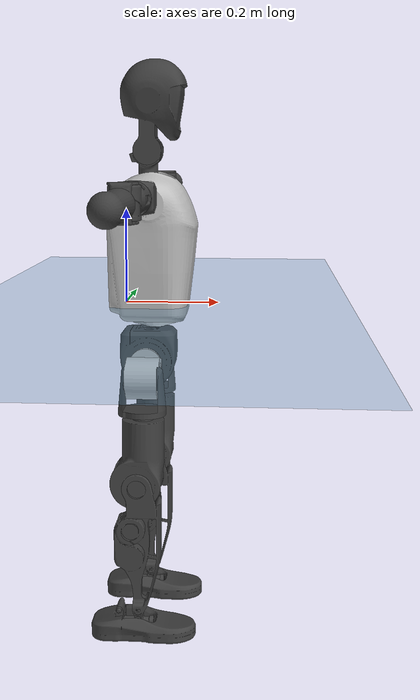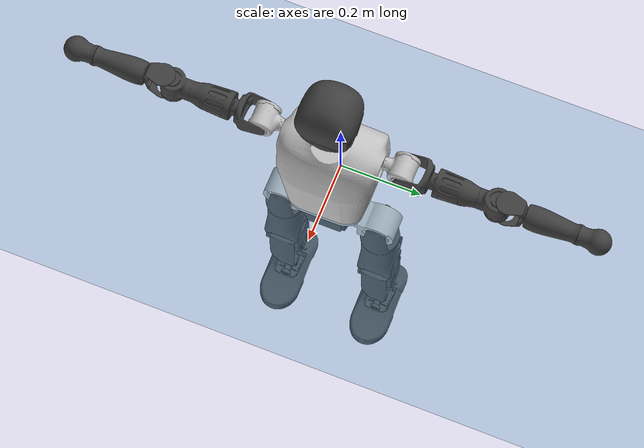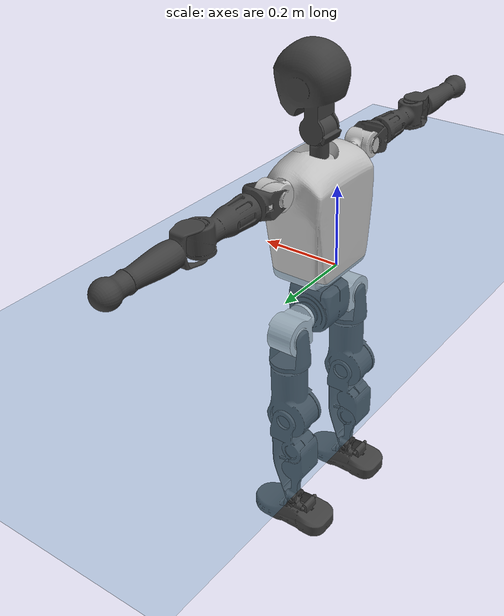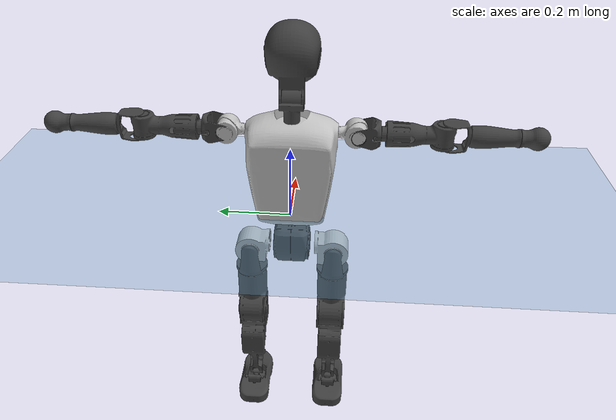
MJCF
<mujoco model="T1">
  <compiler angle="radian" assetdir="assets" balanceinertia="true" inertiafromgeom="false"/>

  <option timestep="0.005" density="1.2" viscosity="2e-05"/>

  <size nkey="1"/>

  <visual>
    <quality shadowsize="8192"/>
    <map shadowclip="0.5"/>
  </visual>

  <default>
    <default class="/">
      <joint armature="0.01" damping="0.01" frictionloss="0.1"/>
      <geom contype="0" conaffinity="0" group="1" solref="-1000 -80"/>
      <site size="0.01 0.005 0.005" group="5"/>
      <general forcelimited="true" biastype="affine" gainprm="25" biasprm="0 -25 -0.6"/>
      <default class="t1">
        <geom rgba="0.25 0.25 0.25 1"/>
        <default class="visual">
          <geom type="mesh" group="2"/>
        </default>
        <default class="collision">
          <geom group="3"/>
        </default>
        <default class="foot">
          <geom size="0.1115 0.05 0.015" type="box" condim="6" group="4" priority="1" solimp="0.015 1 0.015"/>
        </default>
        <default class="reward_collision_sphere">
          <geom group="5" rgba="1 0 0 1"/>
        </default>
      </default>
    </default>
  </default>

  <asset>
    <texture type="skybox" colorspace="auto" name="//unnamed_texture_0" builtin="gradient" rgb1="0.95 0.95 0.95" rgb2="0.95 0.95 0.95" width="100" height="600"/>
    <texture type="2d" colorspace="auto" name="texplane" builtin="checker" rgb1="0.345 0.575 0.748" rgb2="0.345 0.575 0.748" markrgb="1 1 1" width="512" height="512"/>
    <material name="MatPlane" class="/" texture="texplane" texuniform="true" texrepeat="2 2" specular="0.9"/>
    <mesh name="Trunk" class="/" file="Trunk.stl"/>
    <mesh name="H1" class="/" file="H1.stl"/>
    <mesh name="H2" class="/" file="H2.stl"/>
    <mesh name="AL1" class="/" file="AL1.stl"/>
    <mesh name="AL2" class="/" file="AL2.stl"/>
    <mesh name="AL3" class="/" file="AL3.stl"/>
    <mesh name="left_hand_link" class="/" file="left_hand_link.stl"/>
    <mesh name="AR1" class="/" file="AR1.stl"/>
    <mesh name="AR2" class="/" file="AR2.stl"/>
    <mesh name="AR3" class="/" file="AR3.stl"/>
    <mesh name="right_hand_link" class="/" file="right_hand_link.stl"/>
    <mesh name="Waist" class="/" file="Waist.stl"/>
    <mesh name="Hip_Pitch_Left" class="/" file="Hip_Pitch_Left.stl"/>
    <mesh name="Hip_Roll_Left" class="/" file="Hip_Roll_Left.stl"/>
    <mesh name="Hip_Yaw_Left" class="/" file="Hip_Yaw_Left.stl"/>
    <mesh name="Shank_Left" class="/" file="Shank_Left.stl"/>
    <mesh name="Ankle_Cross_Left" class="/" file="Ankle_Cross_Left.stl"/>
    <mesh name="left_foot_link" class="/" file="left_foot_link.stl"/>
    <mesh name="Hip_Pitch_Right" class="/" file="Hip_Pitch_Right.stl"/>
    <mesh name="Hip_Roll_Right" class="/" file="Hip_Roll_Right.stl"/>
    <mesh name="Hip_Yaw_Right" class="/" file="Hip_Yaw_Right.stl"/>
    <mesh name="Shank_Right" class="/" file="Shank_Right.stl"/>
    <mesh name="Ankle_Cross_Right" class="/" file="Ankle_Cross_Right.stl"/>
    <mesh name="right_foot_link" class="/" file="right_foot_link.stl"/>
  </asset>

  <worldbody>
    <geom name="floor" class="/" size="100 100 0.125" type="plane" group="0" material="MatPlane"/>
    <light name="toplight_shadow" class="/" pos="0 0 5" dir="0.0990148 0.0990148 -0.990148" type="directional" ambient="0.04 0.04 0.04" diffuse="0.55 0.55 0.55" specular="0.12 0.12 0.12"/>
    <light name="toplight_fill" class="/" pos="0 0 5" dir="0.0990148 0.0990148 -0.990148" type="directional" castshadow="false" ambient="0.04 0.04 0.04" diffuse="0.3 0.3 0.3" specular="0.08 0.08 0.08"/>
    <body name="trunk" childclass="t1" pos="-8.56854e-05 0.000151359 -4.71943e-05" quat="1 -1.82808e-06 -4.3662e-05 -1.52795e-05">
      <inertial pos="0.0412859 0.000147173 0.111932" quat="0.999923 -0.000960831 -0.0119955 0.00312265" mass="11.7059" diaginertia="0.0251325 0.160025 0.0763573"/>
      <joint name="//unnamed_joint_0" type="free" armature="0" damping="0" frictionloss="0"/>
      <geom name="//unnamed_geom_1" class="visual" rgba="0.76 0.76 0.76 1" mesh="Trunk"/>
      <geom name="//unnamed_geom_2" class="collision" size="0.0747523 0.0996698 0.149505" pos="0.0462272 0 0.127727" type="box"/>
      <geom name="//unnamed_geom_3" class="reward_collision_sphere" size="0.11462" pos="0.0462272 0 0.106439"/>
      <geom name="//unnamed_geom_4" class="reward_collision_sphere" size="0.0149505" pos="0.0462272 0.0981962 0"/>
      <geom name="//unnamed_geom_5" class="reward_collision_sphere" size="0.0149505" pos="0.0462272 -0.0981962 0"/>
      <geom name="//unnamed_geom_6" class="reward_collision_sphere" size="0.0149505" pos="0.0462272 0.123612 0.19159"/>
      <geom name="//unnamed_geom_7" class="reward_collision_sphere" size="0.0149505" pos="0.0462272 -0.123612 0.19159"/>
      <site name="imu" pos="0.00433882 0.00327886 0.00203452" size="0.00996698"/>
      <camera name="track" pos="0 -2.3105 0" quat="0.707107 0.707107 0 0" mode="trackcom"/>
      <camera name="ego_camera" pos="0.0939953 0 0.447044" quat="-0.5 -0.5 0.5 0.5"/>
      <body name="H1" pos="0.048077 -9.20161e-05 0.257965" quat="1 -2.15719e-06 -1.90508e-05 3.52457e-05">
        <inertial pos="-0.00114754 -0.00105293 0.0606933" quat="0.763576 -0.0137605 0.00158729 0.64557" mass="0.44484" diaginertia="6.58688e-05 0.000465436 0.000206051"/>
        <joint name="AAHead_yaw" pos="0 0 0" axis="0.000150277 -0.00203071 0.999998" stiffness="9.36042e-05" range="-1.57023 1.56865" armature="0.0100949" damping="0.00613878" frictionloss="0.094678"/>
        <geom name="//unnamed_geom_8" class="visual" mesh="H1"/>
        <body name="H2" pos="1.14872e-05 1.70378e-05 0.0659845" quat="1 -6.99407e-06 -4.4327e-05 -7.10927e-05">
          <inertial pos="0.00551645 0.000859788 0.104871" quat="0.988489 0.106323 -0.0734585 -0.0786682" mass="0.624073" diaginertia="0.000552806 0.00395417 0.00232835"/>
          <joint name="Head_pitch" pos="0 0 0" axis="0.00179786 -0.999998 0.00104882" range="-1.21645 0.351036" armature="0.0100335" damping="0.00540409" frictionloss="0.104099"/>
          <geom name="//unnamed_geom_9" class="visual" mesh="H2"/>
          <geom name="//unnamed_geom_10" class="collision" size="0.0797358" pos="0.00770454 0 0.117083"/>
          <geom name="//unnamed_geom_11" class="reward_collision_sphere" size="0.0897028" pos="0.0154091 0 0.106439"/>
        </body>
      </body>
      <body name="AL1" pos="0.0459979 0.123141 0.233818" quat="1 -0.000142157 0.000372527 -5.99324e-06">
        <inertial pos="-0.000673904 0.0524388 0.000583569" quat="0.503099 0.496082 -0.504872 0.495882" mass="0.524825" diaginertia="0.000370073 0.00266154 0.000397682"/>
        <joint name="Left_Shoulder_Pitch" pos="0 0 0" axis="-0.000924628 0.999999 0.00128016" range="-3.29727 1.21408" armature="0.00999059" damping="0.01135" frictionloss="0.099977"/>
        <geom name="//unnamed_geom_12" class="visual" rgba="0.76 0.76 0.76 1" mesh="AL1"/>
        <body name="AL2" pos="0.000723469 0.0548899 0.000918637" quat="1 -0.000323703 0.000393598 0.000126838">
          <inertial pos="0.00306502 0.0443314 -0.00103473" quat="0.487417 0.509244 -0.487535 0.515174" mass="0.156672" diaginertia="0.000108563 0.000707666 0.000240647"/>
          <joint name="Left_Shoulder_Roll" pos="0 0 0" axis="-1 -0.00018431 0.00089843" range="-1.57365 1.74251" armature="0.0101294" damping="0.00292134" frictionloss="0.0971896"/>
          <geom name="//unnamed_geom_13" class="visual" mesh="AL2"/>
          <body name="AL3" pos="0.000760276 0.0713544 -0.000422562" quat="1 -2.01402e-05 -2.46005e-05 -1.18464e-06">
            <inertial pos="-0.000589856 0.0982618 0.000727238" quat="0.703413 0.710781 -0.000964691 0.000776288" mass="0.995419" diaginertia="0.00346 0.026341 0.000846934"/>
            <joint name="Left_Elbow_Pitch" pos="0 0 0" axis="0.000117738 -0.999996 -0.00294638" range="-2.26723 2.27248" armature="0.00978526" damping="0.0069279" frictionloss="0.0989949"/>
            <geom name="//unnamed_geom_14" class="visual" mesh="AL3"/>
            <geom name="//unnamed_geom_15" class="collision" size="0.0299009 0.0747523" pos="0 0.0577625 0" quat="0.707105 0.707108 0 0" type="cylinder"/>
            <geom name="//unnamed_geom_16" class="reward_collision_sphere" size="0.0358811"/>
            <body name="left_hand_link" pos="-0.000119414 0.170605 0.000477378" quat="1 4.96256e-05 -5.56887e-05 -0.00017568">
              <inertial pos="-0.000442734 0.126561 0.000206033" quat="0.7078 0.706411 -0.00138803 0.000296589" mass="0.325247" diaginertia="0.00222586 0.0167232 0.000292806"/>
              <joint name="Left_Elbow_Yaw" pos="0 0 0" axis="0.00193166 -7.84157e-05 0.999998" range="-2.44874 0.00886541" armature="0.0100473" damping="0.00525701" frictionloss="0.09678"/>
              <geom name="//unnamed_geom_17" class="visual" mesh="left_hand_link"/>
              <geom name="//unnamed_geom_18" class="collision" size="0.0299009 0.0872111" pos="0 0.150182 0" quat="0.707105 0.707108 0 0" type="cylinder"/>
              <geom name="//unnamed_geom_19" class="reward_collision_sphere" size="0.0498349"/>
              <geom name="//unnamed_geom_20" class="reward_collision_sphere" size="0.0348844" pos="0 0.127077 0"/>
              <geom name="//unnamed_geom_21" class="reward_collision_sphere" size="0.0348844" pos="0 0.248379 0"/>
            </body>
          </body>
        </body>
      </body>
      <body name="AR1" pos="0.0448038 -0.12208 0.233736" quat="1 0.000285774 0.000661936 -3.99653e-05">
        <inertial pos="-9.6319e-05 -0.0520714 -0.000322405" quat="0.505278 0.495427 -0.50393 0.495279" mass="0.520688" diaginertia="0.000369787 0.00262804 0.000394081"/>
        <joint name="Right_Shoulder_Pitch" pos="0 0 0" axis="0.00144595 -0.999994 -0.0029999" range="-1.22535 3.30509" armature="0.00998957" damping="0.00609753" frictionloss="0.0971638"/>
        <geom name="//unnamed_geom_22" class="visual" rgba="0.76 0.76 0.76 1" mesh="AR1"/>
        <body name="AR2" pos="-0.000896213 -0.0537387 -0.000279599" quat="1 0.000104809 -9.00101e-05 -1.11512e-05">
          <inertial pos="0.00379567 -0.0446347 0.000845305" quat="0.51259 0.487653 -0.511994 0.487143" mass="0.157809" diaginertia="0.00010756 0.000711753 0.000238372"/>
          <joint name="Right_Shoulder_Roll" pos="0 0 0" axis="-0.999978 0.00298047 -0.00589425" range="-1.74099 1.56752" armature="0.00998738" damping="0.00326297" frictionloss="0.101673"/>
          <geom name="//unnamed_geom_23" class="visual" mesh="AR2"/>
          <body name="AR3" pos="0.000572858 -0.0706169 0.00011696" quat="1 0.000120168 -0.000122503 -0.000511738">
            <inertial pos="-0.000108296 -0.0984376 -0.00046542" quat="0.710723 0.70347 -0.00162176 0.000362584" mass="0.999044" diaginertia="0.00345345 0.025834 0.000839079"/>
            <joint name="Right_Elbow_Pitch" pos="0 0 0" axis="-0.000148479 1 0.000404918" range="-2.27489 2.27258" armature="0.00990068" damping="0.00750403" frictionloss="0.10203"/>
            <geom name="//unnamed_geom_24" class="visual" mesh="AR3"/>
            <geom name="//unnamed_geom_25" class="collision" size="0.0299009 0.0747523" pos="0 -0.0577625 0" quat="0.707105 0.707108 0 0" type="cylinder"/>
            <geom name="//unnamed_geom_26" class="reward_collision_sphere" size="0.0358811"/>
            <body name="right_hand_link" pos="-6.74742e-05 -0.169694 0.00028762" quat="1 -0.000168555 0.000296391 -0.000152462">
              <inertial pos="0.000186147 -0.127266 0.000584602" quat="0.705539 0.708668 0.000990213 0.00211034" mass="0.319364" diaginertia="0.00220501 0.0166556 0.000292914"/>
              <joint name="Right_Elbow_Yaw" pos="0 0 0" axis="-0.00116674 -0.000886203 0.999999" range="-0.0180195 2.43484" armature="0.0100766" damping="0.00688872" frictionloss="0.101322"/>
              <geom name="//unnamed_geom_27" class="visual" mesh="right_hand_link"/>
              <geom name="//unnamed_geom_28" class="collision" size="0.0299009 0.0872111" pos="0 -0.150182 0" quat="0.707105 0.707108 0 0" type="cylinder"/>
              <geom name="//unnamed_geom_29" class="reward_collision_sphere" size="0.0498349"/>
              <geom name="//unnamed_geom_30" class="reward_collision_sphere" size="0.0348844" pos="0 -0.127077 0"/>
              <geom name="//unnamed_geom_31" class="reward_collision_sphere" size="0.0348844" pos="0 -0.248379 0"/>
            </body>
          </body>
        </body>
      </body>
      <body name="Waist" pos="0.0491883 -0.00112746 -0.123877" quat="1 5.13136e-05 5.51378e-05 -6.2843e-05">
        <inertial pos="0.000524 4.00729e-05 0.0083637" quat="0.983626 0.000253513 -0.180202 0.00264504" mass="2.60668" diaginertia="0.00145945 0.0110589 0.00654397"/>
        <joint name="Waist" pos="0 0 0" axis="-0.000874126 0.00174304 0.999998" range="-1.5544 1.57267" armature="0.00957161" damping="0.0102574" frictionloss="0.0998622"/>
        <geom name="//unnamed_geom_32" class="visual" mesh="Waist"/>
        <body name="Hip_Pitch_Left" pos="0.000638896 0.121833 -0.00104524" quat="1 -9.21961e-05 0.000134529 -0.000222223">
          <inertial pos="0.00047501 -0.00918444 -0.0202669" quat="0.974927 0.22227 0.0104123 0.00201475" mass="1.0171" diaginertia="0.000491188 0.00297524 0.00171287"/>
          <joint name="Left_Hip_Pitch" pos="0 0 0" axis="-0.00141988 0.999999 -0.00037674" range="-1.80139 1.57585" armature="0.0102441" damping="0.00668503" frictionloss="0.0992287"/>
          <geom name="//unnamed_geom_33" class="visual" rgba="0.76 0.76 0.76 1" mesh="Hip_Pitch_Left"/>
          <body name="Hip_Roll_Left" pos="0.000245638 0.000844299 -0.021588" quat="1 2.23265e-06 1.98778e-06 -1.73596e-05">
            <inertial pos="0.00185109 -0.000187741 -0.0578917" quat="0.705256 -0.00600923 -0.00513064 0.708908" mass="0.37853" diaginertia="0.000475386 0.00308775 0.000701204"/>
            <joint name="Left_Hip_Roll" pos="0 0 0" axis="-0.999995 -0.00222502 0.00229866" range="-1.56939 0.21141" armature="0.0100595" damping="0.0110092" frictionloss="0.103993"/>
            <geom name="//unnamed_geom_34" class="visual" mesh="Hip_Roll_Left"/>
            <geom name="//unnamed_geom_35" class="reward_collision_sphere" size="0.0548184"/>
            <body name="Hip_Yaw_Left" pos="0.00135748 4.11553e-06 -0.0873727" quat="1 9.63078e-05 7.92928e-05 0.000202355">
              <inertial pos="-0.00495085 4.11596e-05 -0.0955138" quat="0.696942 -0.0337571 -0.031681 0.715632" mass="2.13538" diaginertia="0.0070022 0.0517709 0.00355061"/>
              <joint name="Left_Hip_Yaw" pos="0 0 0" axis="-1.28409e-06 8.0057e-06 -1" range="-0.986424 1.00706" armature="0.0100479" damping="0.0133278" frictionloss="0.100078"/>
              <geom name="//unnamed_geom_36" class="visual" mesh="Hip_Yaw_Left"/>
              <geom name="//unnamed_geom_37" class="collision" size="0.0498349 0.0797358" type="cylinder"/>
              <body name="Shank_Left" pos="-0.00963671 2.84919e-05 -0.144523" quat="1 -5.70583e-05 8.36566e-05 4.33098e-05">
                <inertial pos="-0.00511603 0.000221194 -0.132565" quat="0.997593 0.00160456 -0.0237628 0.0651285" mass="1.6956" diaginertia="0.00942144 0.0710902 0.00255736"/>
                <joint name="Left_Knee_Pitch" pos="0 0 0" axis="0.000297056 0.999987 0.00509868" range="-0.0153619 2.35274" armature="0.0100281" damping="0.00917476" frictionloss="0.0973237"/>
                <geom name="//unnamed_geom_38" class="visual" mesh="Shank_Left"/>
                <geom name="//unnamed_geom_39" class="collision" size="0.0498349 0.0747523" pos="0 0 -0.127727" type="cylinder"/>
                <geom name="//unnamed_geom_40" class="reward_collision_sphere" size="0.0647854"/>
                <body name="Ankle_Cross_Left" pos="-0.000708035 -0.000448461 -0.299213" quat="1 3.75173e-05 4.58531e-05 0.000120293">
                  <inertial pos="-0.0022488 -0.000686617 -0.00937099" quat="0.445117 0.549211 0.552416 0.441673" mass="0.0718022" diaginertia="7.84438e-06 5.34149e-05 1.54852e-05"/>
                  <joint name="Left_Ankle_Pitch" pos="0 0 0" axis="-6.55169e-05 1 -0.000332326" range="-0.866727 0.357398" armature="0.0103228" damping="0.00987638" frictionloss="0.10073"/>
                  <geom name="//unnamed_geom_41" class="visual" mesh="Ankle_Cross_Left"/>
                  <body name="left_foot_link" pos="-0.00124016 0.000730728 -0.0134751" quat="1 -9.76698e-05 1.1073e-05 -0.000306158">
                    <inertial pos="0.000549983 4.08275e-05 -0.00923826" quat="-0.000129356 0.621361 -0.000527519 0.783524" mass="0.677246" diaginertia="0.000733832 0.00486535 0.00302955"/>
                    <joint name="Left_Ankle_Roll" pos="0 0 0" axis="-0.999997 0.000695622 -0.00226195" range="-0.440426 0.440854" armature="0.0100077" damping="0.0105307" frictionloss="0.10001"/>
                    <geom name="//unnamed_geom_42" class="visual" mesh="left_foot_link"/>
                    <geom name="left_foot" class="foot" size="0.105643 0.0509176 0.0153009" pos="0.00770454 0 -0.0159659"/>
                    <geom name="//unnamed_geom_44" class="reward_collision_sphere" size="0.0518283" pos="0.00770454 0 -0.0159659"/>
                    <geom name="//unnamed_geom_45" class="reward_collision_sphere" size="0.0299009" pos="0.0731931 -0.0265707 -0.0159659"/>
                    <geom name="//unnamed_geom_46" class="reward_collision_sphere" size="0.0299009" pos="-0.0539318 -0.0265707 -0.0159659"/>
                    <site name="left_foot" class="foot" pos="0.00770454 0 -0.0159659" size="0.00996698"/>
                  </body>
                </body>
              </body>
            </body>
          </body>
        </body>
        <body name="Hip_Pitch_Right" pos="-0.000990781 -0.122285 -0.000580296" quat="1 0.000201881 6.90734e-05 -8.23967e-05">
          <inertial pos="0.000973405 0.00859277 -0.0191994" quat="0.973655 -0.227539 0.0140216 -0.00501944" mass="1.00095" diaginertia="0.000484971 0.00296591 0.00166875"/>
          <joint name="Right_Hip_Pitch" pos="0 0 0" axis="-0.00168515 -0.999998 0.000972285" stiffness="0.00124463" range="-1.57208 1.784" armature="0.0103973" damping="0.00694573" frictionloss="0.0990399"/>
          <geom name="//unnamed_geom_47" class="visual" rgba="0.76 0.76 0.76 1" mesh="Hip_Pitch_Right"/>
          <body name="Hip_Roll_Right" pos="0.000293006 -9.07437e-05 -0.0203759" quat="1 0.000268878 -0.000200763 -5.79322e-05">
            <inertial pos="0.000954821 -0.000128114 -0.0580316" quat="0.705169 -0.00658686 -0.006013 0.708983" mass="0.380481" diaginertia="0.000472581 0.00310156 0.000701839"/>
            <joint name="Right_Hip_Roll" pos="0 0 0" axis="-0.999997 0.00228746 -0.0011993" range="-0.183414 1.56064" armature="0.0100135" damping="0.00702818" frictionloss="0.0956641"/>
            <geom name="//unnamed_geom_48" class="visual" mesh="Hip_Roll_Right"/>
            <geom name="//unnamed_geom_49" class="reward_collision_sphere" size="0.0548184"/>
            <body name="Hip_Yaw_Right" pos="-0.000289452 -0.000476543 -0.0869485" quat="1 -3.13353e-06 1.23663e-05 -4.57045e-05">
              <inertial pos="-0.00502209 0.000406613 -0.0954042" quat="0.714416 -0.031426 -0.0336304 0.698206" mass="2.17181" diaginertia="0.00700353 0.0517796 0.00359959"/>
              <joint name="Right_Hip_Yaw" pos="0 0 0" axis="-0.00286513 0.00882099 -0.999957" range="-0.999149 1.01154" armature="0.00984536" damping="0.00332645" frictionloss="0.0993823"/>
              <geom name="//unnamed_geom_50" class="visual" mesh="Hip_Yaw_Right"/>
              <geom name="//unnamed_geom_51" class="collision" size="0.0498349 0.0797358" type="cylinder"/>
              <body name="Shank_Right" pos="-0.0109892 -0.000174393 -0.142567" quat="1 -0.00047099 4.95528e-05 -8.78085e-05">
                <inertial pos="-0.00458956 -0.000352401 -0.129991" quat="0.999263 -0.000187906 -0.0231316 -0.0306408" mass="1.79235" diaginertia="0.00960737 0.073476 0.00272114"/>
                <joint name="Right_Knee_Pitch" pos="0 0 0" axis="-0.00574617 -0.999956 0.00746764" range="-2.33769 -0.00365432" armature="0.0103066" damping="0.00577237" frictionloss="0.0995601"/>
                <geom name="//unnamed_geom_52" class="visual" mesh="Shank_Right"/>
                <geom name="//unnamed_geom_53" class="collision" size="0.0498349 0.0747523" pos="0 0 -0.127727" type="cylinder"/>
                <geom name="//unnamed_geom_54" class="reward_collision_sphere" size="0.0647854"/>
                <body name="Ankle_Cross_Right" pos="0.000689349 -8.28659e-05 -0.298261" quat="1 -2.10007e-06 -6.04534e-05 8.81861e-06">
                  <inertial pos="-0.00300797 0.0010219 -0.00847524" quat="0.443242 0.551576 0.550507 0.442993" mass="0.0716775" diaginertia="7.73791e-06 5.18893e-05 1.5297e-05"/>
                  <joint name="Right_Ankle_Pitch" pos="0 0 0" axis="-0.0024624 -0.999996 -0.00157688" range="-0.345087 0.871406" armature="0.00995327" damping="0.00757794" frictionloss="0.0972075"/>
                  <geom name="//unnamed_geom_55" class="visual" mesh="Ankle_Cross_Right"/>
                  <body name="right_foot_link" pos="0.000386788 -0.000691671 -0.0120282" quat="1 4.14507e-06 -4.69565e-06 6.27473e-06">
                    <inertial pos="-0.000684699 -0.000448481 -0.0096745" quat="-0.000220239 0.620433 0.000553592 0.784259" mass="0.677555" diaginertia="0.000732763 0.00494109 0.00297346"/>
                    <joint name="Right_Ankle_Roll" pos="0 0 0" axis="-0.999987 0.00495877 -0.000702389" range="-0.447611 0.438988" armature="0.0100115" damping="0.00470823" frictionloss="0.100861"/>
                    <geom name="//unnamed_geom_56" class="visual" mesh="right_foot_link"/>
                    <geom name="right_foot" class="foot" size="0.102324 0.0496615 0.0155263" pos="0.00770454 0 -0.0159659"/>
                    <geom name="//unnamed_geom_58" class="reward_collision_sphere" size="0.0398679"/>
                    <geom name="//unnamed_geom_59" class="reward_collision_sphere" size="0.0299009" pos="0.00770454 0 -0.0159659"/>
                    <geom name="//unnamed_geom_60" class="reward_collision_sphere" size="0.0299009" pos="0.0731931 0.0265707 -0.0159659"/>
                    <geom name="//unnamed_geom_61" class="reward_collision_sphere" size="0.0299009" pos="-0.0539318 0.0265707 -0.0159659"/>
                    <site name="right_foot" class="foot" pos="0.00770454 0 -0.0159659" size="0.00996698"/>
                  </body>
                </body>
              </body>
            </body>
          </body>
        </body>
      </body>
    </body>
  </worldbody>

  <contact>
    <pair class="/" geom1="floor" geom2="left_foot" name="//unnamed_contact_0"/>
    <pair class="/" geom1="floor" geom2="right_foot" name="//unnamed_contact_1"/>
  </contact>

  <actuator>
    <general name="AAHead_yaw" class="/" joint="AAHead_yaw" forcerange="-7.06122 7.06122" gainprm="25.3911" biasprm="0 -25.3911 -0.584382"/>
    <general name="Head_pitch" class="/" joint="Head_pitch" forcerange="-6.97457 6.97457" gainprm="25.3911" biasprm="0 -25.3911 -0.584382"/>
    <general name="Left_Shoulder_Pitch" class="/" joint="Left_Shoulder_Pitch" forcerange="-18.4582 18.4582" gainprm="25.3911" biasprm="0 -25.3911 -0.584382"/>
    <general name="Left_Shoulder_Roll" class="/" joint="Left_Shoulder_Roll" forcerange="-17.7662 17.7662" gainprm="25.3911" biasprm="0 -25.3911 -0.584382"/>
    <general name="Left_Elbow_Pitch" class="/" joint="Left_Elbow_Pitch" forcerange="-18.0943 18.0943" gainprm="25.3911" biasprm="0 -25.3911 -0.584382"/>
    <general name="Left_Elbow_Yaw" class="/" joint="Left_Elbow_Yaw" forcerange="-18.0155 18.0155" gainprm="25.3911" biasprm="0 -25.3911 -0.584382"/>
    <general name="Right_Shoulder_Pitch" class="/" joint="Right_Shoulder_Pitch" forcerange="-18.0509 18.0509" gainprm="25.3911" biasprm="0 -25.3911 -0.584382"/>
    <general name="Right_Shoulder_Roll" class="/" joint="Right_Shoulder_Roll" forcerange="-18.5332 18.5332" gainprm="25.3911" biasprm="0 -25.3911 -0.584382"/>
    <general name="Right_Elbow_Pitch" class="/" joint="Right_Elbow_Pitch" forcerange="-18.1537 18.1537" gainprm="25.3911" biasprm="0 -25.3911 -0.584382"/>
    <general name="Right_Elbow_Yaw" class="/" joint="Right_Elbow_Yaw" forcerange="-17.8419 17.8419" gainprm="25.3911" biasprm="0 -25.3911 -0.584382"/>
    <general name="Waist" class="/" joint="Waist" forcerange="-29.6519 29.6519" gainprm="25.3911" biasprm="0 -25.3911 -0.584382"/>
    <general name="Left_Hip_Pitch" class="/" joint="Left_Hip_Pitch" forcerange="-44.7841 44.7841" gainprm="25.3911" biasprm="0 -25.3911 -0.584382"/>
    <general name="Left_Hip_Roll" class="/" joint="Left_Hip_Roll" forcerange="-29.1659 29.1659" gainprm="25.3911" biasprm="0 -25.3911 -0.584382"/>
    <general name="Left_Hip_Yaw" class="/" joint="Left_Hip_Yaw" forcerange="-30.4638 30.4638" gainprm="25.3911" biasprm="0 -25.3911 -0.584382"/>
    <general name="Left_Knee_Pitch" class="/" joint="Left_Knee_Pitch" forcerange="-59.8966 59.8966" gainprm="25.3911" biasprm="0 -25.3911 -0.584382"/>
    <general name="Left_Ankle_Pitch" class="/" joint="Left_Ankle_Pitch" forcerange="-19.8076 19.8076" gainprm="25.3911" biasprm="0 -25.3911 -0.584382"/>
    <general name="Left_Ankle_Roll" class="/" joint="Left_Ankle_Roll" forcerange="-14.8707 14.8707" gainprm="25.3911" biasprm="0 -25.3911 -0.584382"/>
    <general name="Right_Hip_Pitch" class="/" joint="Right_Hip_Pitch" forcerange="-44.8118 44.8118" gainprm="25.3911" biasprm="0 -25.3911 -0.584382"/>
    <general name="Right_Hip_Roll" class="/" joint="Right_Hip_Roll" forcerange="-30.0992 30.0992" gainprm="25.3911" biasprm="0 -25.3911 -0.584382"/>
    <general name="Right_Hip_Yaw" class="/" joint="Right_Hip_Yaw" forcerange="-30.4778 30.4778" gainprm="25.3911" biasprm="0 -25.3911 -0.584382"/>
    <general name="Right_Knee_Pitch" class="/" joint="Right_Knee_Pitch" forcerange="-59.5595 59.5595" gainprm="25.3911" biasprm="0 -25.3911 -0.584382"/>
    <general name="Right_Ankle_Pitch" class="/" joint="Right_Ankle_Pitch" forcerange="-19.5917 19.5917" gainprm="25.3911" biasprm="0 -25.3911 -0.584382"/>
    <general name="Right_Ankle_Roll" class="/" joint="Right_Ankle_Roll" forcerange="-15.4565 15.4565" gainprm="25.3911" biasprm="0 -25.3911 -0.584382"/>
  </actuator>

  <sensor>
    <gyro site="imu" name="imu_angular_velocity"/>
    <velocimeter site="imu" name="imu_linear_velocity"/>
    <framelinvel objtype="site" objname="left_foot" name="left_foot_global_linear_velocity"/>
    <framelinvel objtype="site" objname="right_foot" name="right_foot_global_linear_velocity"/>
  </sensor>

  <keyframe>
    <key name="home" qpos="0 0 0.6385 1 0 0 0 0 0 0 1.4 0 -0.4 0 -1.4 0 0.4 0 -0.4 0 0 0.8 -0.4 0 0.4 0 0 -0.8 0.4 0"/>
  </keyframe>
</mujoco>
